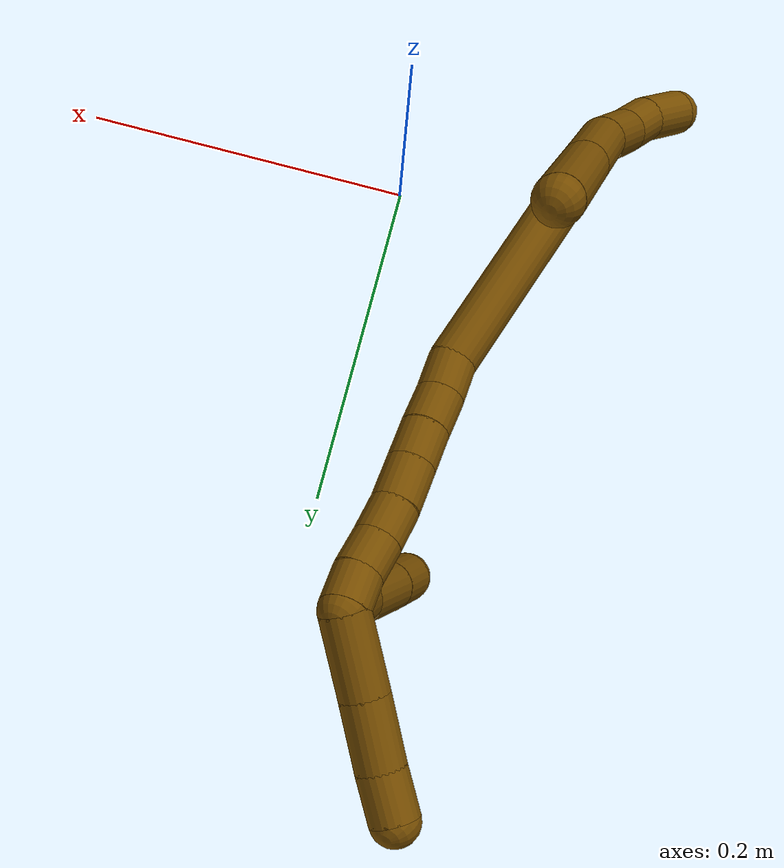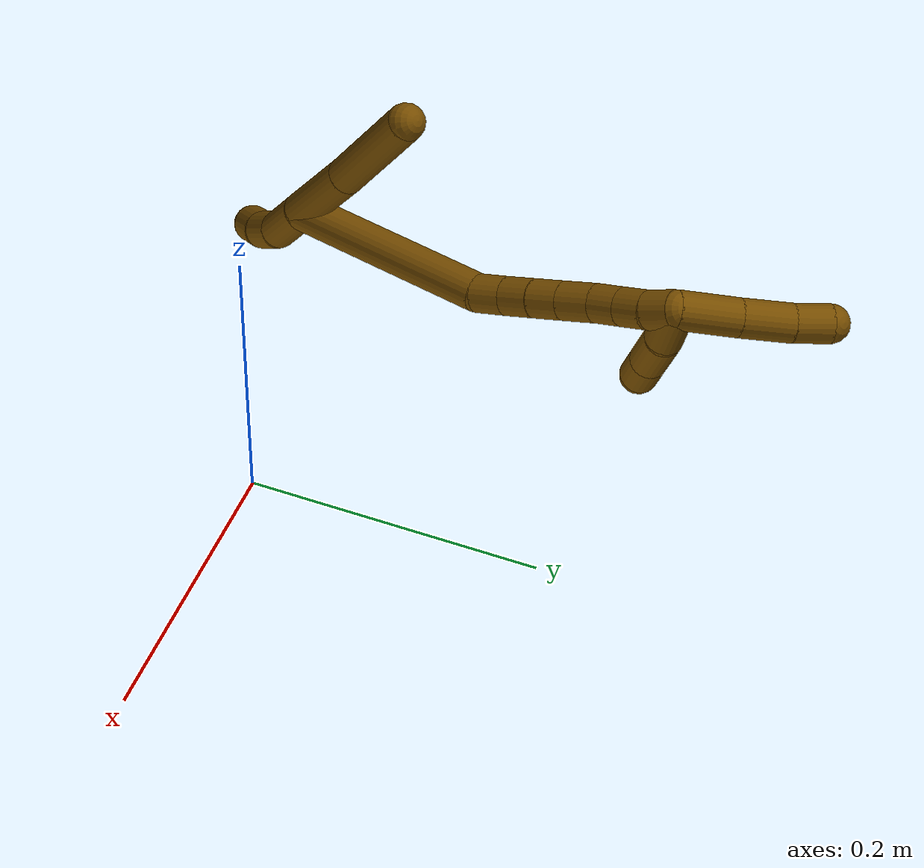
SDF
<sdf version="1.7">
 <world name="default">
  <model name="12">
   <static>0</static>
   <link name="12">
    <collision name="collision-cylinder-e_1_2_8">
     <pose>-0.008045 -0.006776 0.03037 0.219521 -0.253017 -0.028031</pose>
     <geometry><cylinder><radius>0.0125</radius><length>0.06428</length></cylinder></geometry>
     <surface>
      <friction><ode><mu>1.16</mu><mu2>1.16</mu2><slip1>0</slip1><slip2>0</slip2></ode></friction>
      <contact><ode><kp>1e+06</kp><kd>1</kd><max_vel>0</max_vel><min_depth>0.001</min_depth></ode></contact>
     </surface>
    </collision>
    <visual name="visual-cylinder-e_1_2_8">
     <pose>-0.008045 -0.006776 0.03037 0.219521 -0.253017 -0.028031</pose>
     <geometry><cylinder><radius>0.0125</radius><length>0.06428</length></cylinder></geometry>
     <material><ambient>0.466667 0.301961 0 1</ambient></material>
    </visual>
    <collision name="collision-cylinder-e_2_8_6">
     <pose>-0.027775 -0.023479 0.100764 0.243123 -0.276104 -0.033943</pose>
     <geometry><cylinder><radius>0.0125</radius><length>0.08572</length></cylinder></geometry>
     <surface>
      <friction><ode><mu>1.16</mu><mu2>1.16</mu2><slip1>0</slip1><slip2>0</slip2></ode></friction>
      <contact><ode><kp>1e+06</kp><kd>1</kd><max_vel>0</max_vel><min_depth>0.001</min_depth></ode></contact>
     </surface>
    </collision>
    <visual name="visual-cylinder-e_2_8_6">
     <pose>-0.027775 -0.023479 0.100764 0.243123 -0.276104 -0.033943</pose>
     <geometry><cylinder><radius>0.0125</radius><length>0.08572</length></cylinder></geometry>
     <material><ambient>0.466667 0.301961 0 1</ambient></material>
    </visual>
    <collision name="collision-cylinder-e_1_2_9">
     <pose>0.003199 0.007218 -0.021262 -2.8143 0.141498 -0.81081</pose>
     <geometry><cylinder><radius>0.0125</radius><length>0.045361</length></cylinder></geometry>
     <surface>
      <friction><ode><mu>1.16</mu><mu2>1.16</mu2><slip1>0</slip1><slip2>0</slip2></ode></friction>
      <contact><ode><kp>1e+06</kp><kd>1</kd><max_vel>0</max_vel><min_depth>0.001</min_depth></ode></contact>
     </surface>
    </collision>
    <visual name="visual-cylinder-e_1_2_9">
     <pose>0.003199 0.007218 -0.021262 -2.8143 0.141498 -0.81081</pose>
     <geometry><cylinder><radius>0.0125</radius><length>0.045361</length></cylinder></geometry>
     <material><ambient>0.466667 0.301961 0 1</ambient></material>
    </visual>
    <collision name="collision-cylinder-e_2_9_10">
     <pose>0.005111 0.016843 -0.054861 -2.949 -0.101929 0.971678</pose>
     <geometry><cylinder><radius>0.0125</radius><length>0.02527</length></cylinder></geometry>
     <surface>
      <friction><ode><mu>1.16</mu><mu2>1.16</mu2><slip1>0</slip1><slip2>0</slip2></ode></friction>
      <contact><ode><kp>1e+06</kp><kd>1</kd><max_vel>0</max_vel><min_depth>0.001</min_depth></ode></contact>
     </surface>
    </collision>
    <visual name="visual-cylinder-e_2_9_10">
     <pose>0.005111 0.016843 -0.054861 -2.949 -0.101929 0.971678</pose>
     <geometry><cylinder><radius>0.0125</radius><length>0.02527</length></cylinder></geometry>
     <material><ambient>0.466667 0.301961 0 1</ambient></material>
    </visual>
    <collision name="collision-cylinder-e_3_10_5">
     <pose>-0.000221 0.024129 -0.080443 -2.78856 -0.279215 1.33451</pose>
     <geometry><cylinder><radius>0.0125</radius><length>0.029369</length></cylinder></geometry>
     <surface>
      <friction><ode><mu>1.16</mu><mu2>1.16</mu2><slip1>0</slip1><slip2>0</slip2></ode></friction>
      <contact><ode><kp>1e+06</kp><kd>1</kd><max_vel>0</max_vel><min_depth>0.001</min_depth></ode></contact>
     </surface>
    </collision>
    <visual name="visual-cylinder-e_3_10_5">
     <pose>-0.000221 0.024129 -0.080443 -2.78856 -0.279215 1.33451</pose>
     <geometry><cylinder><radius>0.0125</radius><length>0.029369</length></cylinder></geometry>
     <material><ambient>0.466667 0.301961 0 1</ambient></material>
    </visual>
    <collision name="collision-cylinder-e_1_2_11">
     <pose>0.024779 0.024071 0.067165 -0.344124 0.33427 -0.05862</pose>
     <geometry><cylinder><radius>0.0125</radius><length>0.151058</length></cylinder></geometry>
     <surface>
      <friction><ode><mu>1.16</mu><mu2>1.16</mu2><slip1>0</slip1><slip2>0</slip2></ode></friction>
      <contact><ode><kp>1e+06</kp><kd>1</kd><max_vel>0</max_vel><min_depth>0.001</min_depth></ode></contact>
     </surface>
    </collision>
    <visual name="visual-cylinder-e_1_2_11">
     <pose>0.024779 0.024071 0.067165 -0.344124 0.33427 -0.05862</pose>
     <geometry><cylinder><radius>0.0125</radius><length>0.151058</length></cylinder></geometry>
     <material><ambient>0.466667 0.301961 0 1</ambient></material>
    </visual>
    <collision name="collision-cylinder-e_2_11_12">
     <pose>0.050097 0.051916 0.14436 -0.359893 0.050163 -0.009127</pose>
     <geometry><cylinder><radius>0.0125</radius><length>0.02146</length></cylinder></geometry>
     <surface>
      <friction><ode><mu>1.16</mu><mu2>1.16</mu2><slip1>0</slip1><slip2>0</slip2></ode></friction>
      <contact><ode><kp>1e+06</kp><kd>1</kd><max_vel>0</max_vel><min_depth>0.001</min_depth></ode></contact>
     </surface>
    </collision>
    <visual name="visual-cylinder-e_2_11_12">
     <pose>0.050097 0.051916 0.14436 -0.359893 0.050163 -0.009127</pose>
     <geometry><cylinder><radius>0.0125</radius><length>0.02146</length></cylinder></geometry>
     <material><ambient>0.466667 0.301961 0 1</ambient></material>
    </visual>
    <collision name="collision-cylinder-e_3_12_13">
     <pose>0.051175 0.058536 0.164721 -0.268877 0.05038 -0.006815</pose>
     <geometry><cylinder><radius>0.0125</radius><length>0.021459</length></cylinder></geometry>
     <surface>
      <friction><ode><mu>1.16</mu><mu2>1.16</mu2><slip1>0</slip1><slip2>0</slip2></ode></friction>
      <contact><ode><kp>1e+06</kp><kd>1</kd><max_vel>0</max_vel><min_depth>0.001</min_depth></ode></contact>
     </surface>
    </collision>
    <visual name="visual-cylinder-e_3_12_13">
     <pose>0.051175 0.058536 0.164721 -0.268877 0.05038 -0.006815</pose>
     <geometry><cylinder><radius>0.0125</radius><length>0.021459</length></cylinder></geometry>
     <material><ambient>0.466667 0.301961 0 1</ambient></material>
    </visual>
    <collision name="collision-cylinder-e_4_13_14">
     <pose>0.052165 0.064707 0.185247 -0.31513 0.041879 -0.006655</pose>
     <geometry><cylinder><radius>0.0125</radius><length>0.021466</length></cylinder></geometry>
     <surface>
      <friction><ode><mu>1.16</mu><mu2>1.16</mu2><slip1>0</slip1><slip2>0</slip2></ode></friction>
      <contact><ode><kp>1e+06</kp><kd>1</kd><max_vel>0</max_vel><min_depth>0.001</min_depth></ode></contact>
     </surface>
    </collision>
    <visual name="visual-cylinder-e_4_13_14">
     <pose>0.052165 0.064707 0.185247 -0.31513 0.041879 -0.006655</pose>
     <geometry><cylinder><radius>0.0125</radius><length>0.021466</length></cylinder></geometry>
     <material><ambient>0.466667 0.301961 0 1</ambient></material>
    </visual>
    <collision name="collision-cylinder-e_5_14_15">
     <pose>0.053071 0.071668 0.206928 -0.3067 0.037851 -0.005851</pose>
     <geometry><cylinder><radius>0.0125</radius><length>0.024112</length></cylinder></geometry>
     <surface>
      <friction><ode><mu>1.16</mu><mu2>1.16</mu2><slip1>0</slip1><slip2>0</slip2></ode></friction>
      <contact><ode><kp>1e+06</kp><kd>1</kd><max_vel>0</max_vel><min_depth>0.001</min_depth></ode></contact>
     </surface>
    </collision>
    <visual name="visual-cylinder-e_5_14_15">
     <pose>0.053071 0.071668 0.206928 -0.3067 0.037851 -0.005851</pose>
     <geometry><cylinder><radius>0.0125</radius><length>0.024112</length></cylinder></geometry>
     <material><ambient>0.466667 0.301961 0 1</ambient></material>
    </visual>
    <collision name="collision-cylinder-e_6_15_16">
     <pose>0.054547 0.077718 0.228263 -0.240236 0.100246 -0.01211</pose>
     <geometry><cylinder><radius>0.0125</radius><length>0.020385</length></cylinder></geometry>
     <surface>
      <friction><ode><mu>1.16</mu><mu2>1.16</mu2><slip1>0</slip1><slip2>0</slip2></ode></friction>
      <contact><ode><kp>1e+06</kp><kd>1</kd><max_vel>0</max_vel><min_depth>0.001</min_depth></ode></contact>
     </surface>
    </collision>
    <visual name="visual-cylinder-e_6_15_16">
     <pose>0.054547 0.077718 0.228263 -0.240236 0.100246 -0.01211</pose>
     <geometry><cylinder><radius>0.0125</radius><length>0.020385</length></cylinder></geometry>
     <material><ambient>0.466667 0.301961 0 1</ambient></material>
    </visual>
    <collision name="collision-cylinder-e_7_16_17">
     <pose>0.056573 0.081974 0.247917 -0.185873 0.100524 -0.009377</pose>
     <geometry><cylinder><radius>0.0125</radius><length>0.020052</length></cylinder></geometry>
     <surface>
      <friction><ode><mu>1.16</mu><mu2>1.16</mu2><slip1>0</slip1><slip2>0</slip2></ode></friction>
      <contact><ode><kp>1e+06</kp><kd>1</kd><max_vel>0</max_vel><min_depth>0.001</min_depth></ode></contact>
     </surface>
    </collision>
    <visual name="visual-cylinder-e_7_16_17">
     <pose>0.056573 0.081974 0.247917 -0.185873 0.100524 -0.009377</pose>
     <geometry><cylinder><radius>0.0125</radius><length>0.020052</length></cylinder></geometry>
     <material><ambient>0.466667 0.301961 0 1</ambient></material>
    </visual>
    <collision name="collision-cylinder-e_8_17_1">
     <pose>0.057313 0.086228 0.267427 -0.243368 -0.026644 0.003258</pose>
     <geometry><cylinder><radius>0.0125</radius><length>0.020009</length></cylinder></geometry>
     <surface>
      <friction><ode><mu>1.16</mu><mu2>1.16</mu2><slip1>0</slip1><slip2>0</slip2></ode></friction>
      <contact><ode><kp>1e+06</kp><kd>1</kd><max_vel>0</max_vel><min_depth>0.001</min_depth></ode></contact>
     </surface>
    </collision>
    <visual name="visual-cylinder-e_8_17_1">
     <pose>0.057313 0.086228 0.267427 -0.243368 -0.026644 0.003258</pose>
     <geometry><cylinder><radius>0.0125</radius><length>0.020009</length></cylinder></geometry>
     <material><ambient>0.466667 0.301961 0 1</ambient></material>
    </visual>
    <collision name="collision-cylinder-e_1_1_18">
     <pose>0.063589 0.096531 0.264362 -2.58797 0.410972 -1.26588</pose>
     <geometry><cylinder><radius>0.0125</radius><length>0.032754</length></cylinder></geometry>
     <surface>
      <friction><ode><mu>1.16</mu><mu2>1.16</mu2><slip1>0</slip1><slip2>0</slip2></ode></friction>
      <contact><ode><kp>1e+06</kp><kd>1</kd><max_vel>0</max_vel><min_depth>0.001</min_depth></ode></contact>
     </surface>
    </collision>
    <visual name="visual-cylinder-e_1_1_18">
     <pose>0.063589 0.096531 0.264362 -2.58797 0.410972 -1.26588</pose>
     <geometry><cylinder><radius>0.0125</radius><length>0.032754</length></cylinder></geometry>
     <material><ambient>0.466667 0.301961 0 1</ambient></material>
    </visual>
    <collision name="collision-cylinder-e_2_18_19">
     <pose>0.074077 0.114662 0.234427 -2.60378 0.194924 -0.681868</pose>
     <geometry><cylinder><radius>0.0125</radius><length>0.040741</length></cylinder></geometry>
     <surface>
      <friction><ode><mu>1.16</mu><mu2>1.16</mu2><slip1>0</slip1><slip2>0</slip2></ode></friction>
      <contact><ode><kp>1e+06</kp><kd>1</kd><max_vel>0</max_vel><min_depth>0.001</min_depth></ode></contact>
     </surface>
    </collision>
    <visual name="visual-cylinder-e_2_18_19">
     <pose>0.074077 0.114662 0.234427 -2.60378 0.194924 -0.681868</pose>
     <geometry><cylinder><radius>0.0125</radius><length>0.040741</length></cylinder></geometry>
     <material><ambient>0.466667 0.301961 0 1</ambient></material>
    </visual>
    <collision name="collision-cylinder-e_3_19_4">
     <pose>0.081043 0.13136 0.206094 -2.61719 0.229936 -0.812659</pose>
     <geometry><cylinder><radius>0.0125</radius><length>0.026505</length></cylinder></geometry>
     <surface>
      <friction><ode><mu>1.16</mu><mu2>1.16</mu2><slip1>0</slip1><slip2>0</slip2></ode></friction>
      <contact><ode><kp>1e+06</kp><kd>1</kd><max_vel>0</max_vel><min_depth>0.001</min_depth></ode></contact>
     </surface>
    </collision>
    <visual name="visual-cylinder-e_3_19_4">
     <pose>0.081043 0.13136 0.206094 -2.61719 0.229936 -0.812659</pose>
     <geometry><cylinder><radius>0.0125</radius><length>0.026505</length></cylinder></geometry>
     <material><ambient>0.466667 0.301961 0 1</ambient></material>
    </visual>
    <collision name="collision-cylinder-e_1_1_20">
     <pose>0.055532 0.107495 0.284858 -1.18197 -0.074169 0.049779</pose>
     <geometry><cylinder><radius>0.0125</radius><length>0.040868</length></cylinder></geometry>
     <surface>
      <friction><ode><mu>1.16</mu><mu2>1.16</mu2><slip1>0</slip1><slip2>0</slip2></ode></friction>
      <contact><ode><kp>1e+06</kp><kd>1</kd><max_vel>0</max_vel><min_depth>0.001</min_depth></ode></contact>
     </surface>
    </collision>
    <visual name="visual-cylinder-e_1_1_20">
     <pose>0.055532 0.107495 0.284858 -1.18197 -0.074169 0.049779</pose>
     <geometry><cylinder><radius>0.0125</radius><length>0.040868</length></cylinder></geometry>
     <material><ambient>0.466667 0.301961 0 1</ambient></material>
    </visual>
    <collision name="collision-cylinder-e_2_20_21">
     <pose>0.05244 0.141949 0.299822 -1.13627 -0.091502 0.058434</pose>
     <geometry><cylinder><radius>0.0125</radius><length>0.034536</length></cylinder></geometry>
     <surface>
      <friction><ode><mu>1.16</mu><mu2>1.16</mu2><slip1>0</slip1><slip2>0</slip2></ode></friction>
      <contact><ode><kp>1e+06</kp><kd>1</kd><max_vel>0</max_vel><min_depth>0.001</min_depth></ode></contact>
     </surface>
    </collision>
    <visual name="visual-cylinder-e_2_20_21">
     <pose>0.05244 0.141949 0.299822 -1.13627 -0.091502 0.058434</pose>
     <geometry><cylinder><radius>0.0125</radius><length>0.034536</length></cylinder></geometry>
     <material><ambient>0.466667 0.301961 0 1</ambient></material>
    </visual>
    <collision name="collision-cylinder-e_3_21_3">
     <pose>0.048784 0.168316 0.312623 -1.09407 -0.169763 0.103548</pose>
     <geometry><cylinder><radius>0.0125</radius><length>0.024596</length></cylinder></geometry>
     <surface>
      <friction><ode><mu>1.16</mu><mu2>1.16</mu2><slip1>0</slip1><slip2>0</slip2></ode></friction>
      <contact><ode><kp>1e+06</kp><kd>1</kd><max_vel>0</max_vel><min_depth>0.001</min_depth></ode></contact>
     </surface>
    </collision>
    <visual name="visual-cylinder-e_3_21_3">
     <pose>0.048784 0.168316 0.312623 -1.09407 -0.169763 0.103548</pose>
     <geometry><cylinder><radius>0.0125</radius><length>0.024596</length></cylinder></geometry>
     <material><ambient>0.466667 0.301961 0 1</ambient></material>
    </visual>
    <collision name="collision-sphere-3">
     <pose>0.046707 0.179086 0.318186 0 -0 0</pose>
     <geometry><sphere><radius>0.0125</radius></sphere></geometry>
     <surface>
      <friction><ode><mu>1.16</mu><mu2>1.16</mu2><slip1>0</slip1><slip2>0</slip2></ode></friction>
      <contact><ode><kp>1e+06</kp><kd>1</kd><max_vel>0</max_vel><min_depth>0.001</min_depth></ode></contact>
     </surface>
    </collision>
    <visual name="visual-sphere-3">
     <pose>0.046707 0.179086 0.318186 0 -0 0</pose>
     <geometry><sphere><radius>0.0125</radius></sphere></geometry>
     <material><ambient>0.466667 0.301961 0 1</ambient></material>
    </visual>
    <collision name="collision-sphere-21">
     <pose>0.050862 0.157546 0.307061 0 -0 0</pose>
     <geometry><sphere><radius>0.0125</radius></sphere></geometry>
     <surface>
      <friction><ode><mu>1.16</mu><mu2>1.16</mu2><slip1>0</slip1><slip2>0</slip2></ode></friction>
      <contact><ode><kp>1e+06</kp><kd>1</kd><max_vel>0</max_vel><min_depth>0.001</min_depth></ode></contact>
     </surface>
    </collision>
    <visual name="visual-sphere-21">
     <pose>0.050862 0.157546 0.307061 0 -0 0</pose>
     <geometry><sphere><radius>0.0125</radius></sphere></geometry>
     <material><ambient>0.466667 0.301961 0 1</ambient></material>
    </visual>
    <collision name="collision-sphere-20">
     <pose>0.054018 0.126351 0.292583 0 -0 0</pose>
     <geometry><sphere><radius>0.0125</radius></sphere></geometry>
     <surface>
      <friction><ode><mu>1.16</mu><mu2>1.16</mu2><slip1>0</slip1><slip2>0</slip2></ode></friction>
      <contact><ode><kp>1e+06</kp><kd>1</kd><max_vel>0</max_vel><min_depth>0.001</min_depth></ode></contact>
     </surface>
    </collision>
    <visual name="visual-sphere-20">
     <pose>0.054018 0.126351 0.292583 0 -0 0</pose>
     <geometry><sphere><radius>0.0125</radius></sphere></geometry>
     <material><ambient>0.466667 0.301961 0 1</ambient></material>
    </visual>
    <collision name="collision-sphere-4">
     <pose>0.084064 0.137821 0.194925 0 -0 0</pose>
     <geometry><sphere><radius>0.0125</radius></sphere></geometry>
     <surface>
      <friction><ode><mu>1.16</mu><mu2>1.16</mu2><slip1>0</slip1><slip2>0</slip2></ode></friction>
      <contact><ode><kp>1e+06</kp><kd>1</kd><max_vel>0</max_vel><min_depth>0.001</min_depth></ode></contact>
     </surface>
    </collision>
    <visual name="visual-sphere-4">
     <pose>0.084064 0.137821 0.194925 0 -0 0</pose>
     <geometry><sphere><radius>0.0125</radius></sphere></geometry>
     <material><ambient>0.466667 0.301961 0 1</ambient></material>
    </visual>
    <collision name="collision-sphere-5">
     <pose>-0.004268 0.02901 -0.093688 0 -0 0</pose>
     <geometry><sphere><radius>0.0125</radius></sphere></geometry>
     <surface>
      <friction><ode><mu>1.16</mu><mu2>1.16</mu2><slip1>0</slip1><slip2>0</slip2></ode></friction>
      <contact><ode><kp>1e+06</kp><kd>1</kd><max_vel>0</max_vel><min_depth>0.001</min_depth></ode></contact>
     </surface>
    </collision>
    <visual name="visual-sphere-5">
     <pose>-0.004268 0.02901 -0.093688 0 -0 0</pose>
     <geometry><sphere><radius>0.0125</radius></sphere></geometry>
     <material><ambient>0.466667 0.301961 0 1</ambient></material>
    </visual>
    <collision name="collision-sphere-10">
     <pose>0.003826 0.019249 -0.067198 0 -0 0</pose>
     <geometry><sphere><radius>0.0125</radius></sphere></geometry>
     <surface>
      <friction><ode><mu>1.16</mu><mu2>1.16</mu2><slip1>0</slip1><slip2>0</slip2></ode></friction>
      <contact><ode><kp>1e+06</kp><kd>1</kd><max_vel>0</max_vel><min_depth>0.001</min_depth></ode></contact>
     </surface>
    </collision>
    <visual name="visual-sphere-10">
     <pose>0.003826 0.019249 -0.067198 0 -0 0</pose>
     <geometry><sphere><radius>0.0125</radius></sphere></geometry>
     <material><ambient>0.466667 0.301961 0 1</ambient></material>
    </visual>
    <collision name="collision-sphere-6">
     <pose>-0.039459 -0.033406 0.140788 0 -0 0</pose>
     <geometry><sphere><radius>0.0125</radius></sphere></geometry>
     <surface>
      <friction><ode><mu>1.16</mu><mu2>1.16</mu2><slip1>0</slip1><slip2>0</slip2></ode></friction>
      <contact><ode><kp>1e+06</kp><kd>1</kd><max_vel>0</max_vel><min_depth>0.001</min_depth></ode></contact>
     </surface>
    </collision>
    <visual name="visual-sphere-6">
     <pose>-0.039459 -0.033406 0.140788 0 -0 0</pose>
     <geometry><sphere><radius>0.0125</radius></sphere></geometry>
     <material><ambient>0.466667 0.301961 0 1</ambient></material>
    </visual>
    <collision name="collision-sphere-9">
     <pose>0.006397 0.014437 -0.042524 0 -0 0</pose>
     <geometry><sphere><radius>0.0125</radius></sphere></geometry>
     <surface>
      <friction><ode><mu>1.16</mu><mu2>1.16</mu2><slip1>0</slip1><slip2>0</slip2></ode></friction>
      <contact><ode><kp>1e+06</kp><kd>1</kd><max_vel>0</max_vel><min_depth>0.001</min_depth></ode></contact>
     </surface>
    </collision>
    <visual name="visual-sphere-9">
     <pose>0.006397 0.014437 -0.042524 0 -0 0</pose>
     <geometry><sphere><radius>0.0125</radius></sphere></geometry>
     <material><ambient>0.466667 0.301961 0 1</ambient></material>
    </visual>
    <collision name="collision-sphere-2">
     <geometry><sphere><radius>0.0125</radius></sphere></geometry>
     <surface>
      <friction><ode><mu>1.16</mu><mu2>1.16</mu2><slip1>0</slip1><slip2>0</slip2></ode></friction>
      <contact><ode><kp>1e+06</kp><kd>1</kd><max_vel>0</max_vel><min_depth>0.001</min_depth></ode></contact>
     </surface>
    </collision>
    <visual name="visual-sphere-2">
     <geometry><sphere><radius>0.0125</radius></sphere></geometry>
     <material><ambient>0.466667 0.301961 0 1</ambient></material>
    </visual>
    <collision name="collision-sphere-19">
     <pose>0.078023 0.1249 0.217264 0 -0 0</pose>
     <geometry><sphere><radius>0.0125</radius></sphere></geometry>
     <surface>
      <friction><ode><mu>1.16</mu><mu2>1.16</mu2><slip1>0</slip1><slip2>0</slip2></ode></friction>
      <contact><ode><kp>1e+06</kp><kd>1</kd><max_vel>0</max_vel><min_depth>0.001</min_depth></ode></contact>
     </surface>
    </collision>
    <visual name="visual-sphere-19">
     <pose>0.078023 0.1249 0.217264 0 -0 0</pose>
     <geometry><sphere><radius>0.0125</radius></sphere></geometry>
     <material><ambient>0.466667 0.301961 0 1</ambient></material>
    </visual>
    <collision name="collision-sphere-8">
     <pose>-0.016091 -0.013552 0.06074 0 -0 0</pose>
     <geometry><sphere><radius>0.0125</radius></sphere></geometry>
     <surface>
      <friction><ode><mu>1.16</mu><mu2>1.16</mu2><slip1>0</slip1><slip2>0</slip2></ode></friction>
      <contact><ode><kp>1e+06</kp><kd>1</kd><max_vel>0</max_vel><min_depth>0.001</min_depth></ode></contact>
     </surface>
    </collision>
    <visual name="visual-sphere-8">
     <pose>-0.016091 -0.013552 0.06074 0 -0 0</pose>
     <geometry><sphere><radius>0.0125</radius></sphere></geometry>
     <material><ambient>0.466667 0.301961 0 1</ambient></material>
    </visual>
    <collision name="collision-sphere-11">
     <pose>0.049559 0.048142 0.13433 0 -0 0</pose>
     <geometry><sphere><radius>0.0125</radius></sphere></geometry>
     <surface>
      <friction><ode><mu>1.16</mu><mu2>1.16</mu2><slip1>0</slip1><slip2>0</slip2></ode></friction>
      <contact><ode><kp>1e+06</kp><kd>1</kd><max_vel>0</max_vel><min_depth>0.001</min_depth></ode></contact>
     </surface>
    </collision>
    <visual name="visual-sphere-11">
     <pose>0.049559 0.048142 0.13433 0 -0 0</pose>
     <geometry><sphere><radius>0.0125</radius></sphere></geometry>
     <material><ambient>0.466667 0.301961 0 1</ambient></material>
    </visual>
    <collision name="collision-sphere-12">
     <pose>0.050635 0.05569 0.15439 0 -0 0</pose>
     <geometry><sphere><radius>0.0125</radius></sphere></geometry>
     <surface>
      <friction><ode><mu>1.16</mu><mu2>1.16</mu2><slip1>0</slip1><slip2>0</slip2></ode></friction>
      <contact><ode><kp>1e+06</kp><kd>1</kd><max_vel>0</max_vel><min_depth>0.001</min_depth></ode></contact>
     </surface>
    </collision>
    <visual name="visual-sphere-12">
     <pose>0.050635 0.05569 0.15439 0 -0 0</pose>
     <geometry><sphere><radius>0.0125</radius></sphere></geometry>
     <material><ambient>0.466667 0.301961 0 1</ambient></material>
    </visual>
    <collision name="collision-sphere-13">
     <pose>0.051716 0.061383 0.175051 0 -0 0</pose>
     <geometry><sphere><radius>0.0125</radius></sphere></geometry>
     <surface>
      <friction><ode><mu>1.16</mu><mu2>1.16</mu2><slip1>0</slip1><slip2>0</slip2></ode></friction>
      <contact><ode><kp>1e+06</kp><kd>1</kd><max_vel>0</max_vel><min_depth>0.001</min_depth></ode></contact>
     </surface>
    </collision>
    <visual name="visual-sphere-13">
     <pose>0.051716 0.061383 0.175051 0 -0 0</pose>
     <geometry><sphere><radius>0.0125</radius></sphere></geometry>
     <material><ambient>0.466667 0.301961 0 1</ambient></material>
    </visual>
    <collision name="collision-sphere-14">
     <pose>0.052614 0.06803 0.195442 0 -0 0</pose>
     <geometry><sphere><radius>0.0125</radius></sphere></geometry>
     <surface>
      <friction><ode><mu>1.16</mu><mu2>1.16</mu2><slip1>0</slip1><slip2>0</slip2></ode></friction>
      <contact><ode><kp>1e+06</kp><kd>1</kd><max_vel>0</max_vel><min_depth>0.001</min_depth></ode></contact>
     </surface>
    </collision>
    <visual name="visual-sphere-14">
     <pose>0.052614 0.06803 0.195442 0 -0 0</pose>
     <geometry><sphere><radius>0.0125</radius></sphere></geometry>
     <material><ambient>0.466667 0.301961 0 1</ambient></material>
    </visual>
    <collision name="collision-sphere-15">
     <pose>0.053527 0.075305 0.218413 0 -0 0</pose>
     <geometry><sphere><radius>0.0125</radius></sphere></geometry>
     <surface>
      <friction><ode><mu>1.16</mu><mu2>1.16</mu2><slip1>0</slip1><slip2>0</slip2></ode></friction>
      <contact><ode><kp>1e+06</kp><kd>1</kd><max_vel>0</max_vel><min_depth>0.001</min_depth></ode></contact>
     </surface>
    </collision>
    <visual name="visual-sphere-15">
     <pose>0.053527 0.075305 0.218413 0 -0 0</pose>
     <geometry><sphere><radius>0.0125</radius></sphere></geometry>
     <material><ambient>0.466667 0.301961 0 1</ambient></material>
    </visual>
    <collision name="collision-sphere-16">
     <pose>0.055567 0.080131 0.238113 0 -0 0</pose>
     <geometry><sphere><radius>0.0125</radius></sphere></geometry>
     <surface>
      <friction><ode><mu>1.16</mu><mu2>1.16</mu2><slip1>0</slip1><slip2>0</slip2></ode></friction>
      <contact><ode><kp>1e+06</kp><kd>1</kd><max_vel>0</max_vel><min_depth>0.001</min_depth></ode></contact>
     </surface>
    </collision>
    <visual name="visual-sphere-16">
     <pose>0.055567 0.080131 0.238113 0 -0 0</pose>
     <geometry><sphere><radius>0.0125</radius></sphere></geometry>
     <material><ambient>0.466667 0.301961 0 1</ambient></material>
    </visual>
    <collision name="collision-sphere-17">
     <pose>0.057579 0.083818 0.25772 0 -0 0</pose>
     <geometry><sphere><radius>0.0125</radius></sphere></geometry>
     <surface>
      <friction><ode><mu>1.16</mu><mu2>1.16</mu2><slip1>0</slip1><slip2>0</slip2></ode></friction>
      <contact><ode><kp>1e+06</kp><kd>1</kd><max_vel>0</max_vel><min_depth>0.001</min_depth></ode></contact>
     </surface>
    </collision>
    <visual name="visual-sphere-17">
     <pose>0.057579 0.083818 0.25772 0 -0 0</pose>
     <geometry><sphere><radius>0.0125</radius></sphere></geometry>
     <material><ambient>0.466667 0.301961 0 1</ambient></material>
    </visual>
    <collision name="collision-sphere-1">
     <pose>0.057046 0.088638 0.277133 0 -0 0</pose>
     <geometry><sphere><radius>0.0125</radius></sphere></geometry>
     <surface>
      <friction><ode><mu>1.16</mu><mu2>1.16</mu2><slip1>0</slip1><slip2>0</slip2></ode></friction>
      <contact><ode><kp>1e+06</kp><kd>1</kd><max_vel>0</max_vel><min_depth>0.001</min_depth></ode></contact>
     </surface>
    </collision>
    <visual name="visual-sphere-1">
     <pose>0.057046 0.088638 0.277133 0 -0 0</pose>
     <geometry><sphere><radius>0.0125</radius></sphere></geometry>
     <material><ambient>0.466667 0.301961 0 1</ambient></material>
    </visual>
    <collision name="collision-sphere-18">
     <pose>0.070131 0.104425 0.251591 0 -0 0</pose>
     <geometry><sphere><radius>0.0125</radius></sphere></geometry>
     <surface>
      <friction><ode><mu>1.16</mu><mu2>1.16</mu2><slip1>0</slip1><slip2>0</slip2></ode></friction>
      <contact><ode><kp>1e+06</kp><kd>1</kd><max_vel>0</max_vel><min_depth>0.001</min_depth></ode></contact>
     </surface>
    </collision>
    <visual name="visual-sphere-18">
     <pose>0.070131 0.104425 0.251591 0 -0 0</pose>
     <geometry><sphere><radius>0.0125</radius></sphere></geometry>
     <material><ambient>0.466667 0.301961 0 1</ambient></material>
    </visual>
    <inertial>
     <pose>0.02881 0.050454 0.133272 0 -0 0</pose>
     <mass>0.75</mass>
     <inertia>
      <ixx>0.000369</ixx>
      <ixy>0</ixy>
      <ixz>0</ixz>
      <iyy>0.000347</iyy>
      <iyz>0</iyz>
      <izz>-0.000159</izz>
     </inertia>
    </inertial>
   </link>
   <pose>-0.10429 -0.005244 0.153202 -0.798284 0.598944 0.201126</pose>
  </model>
 </world>
</sdf>
